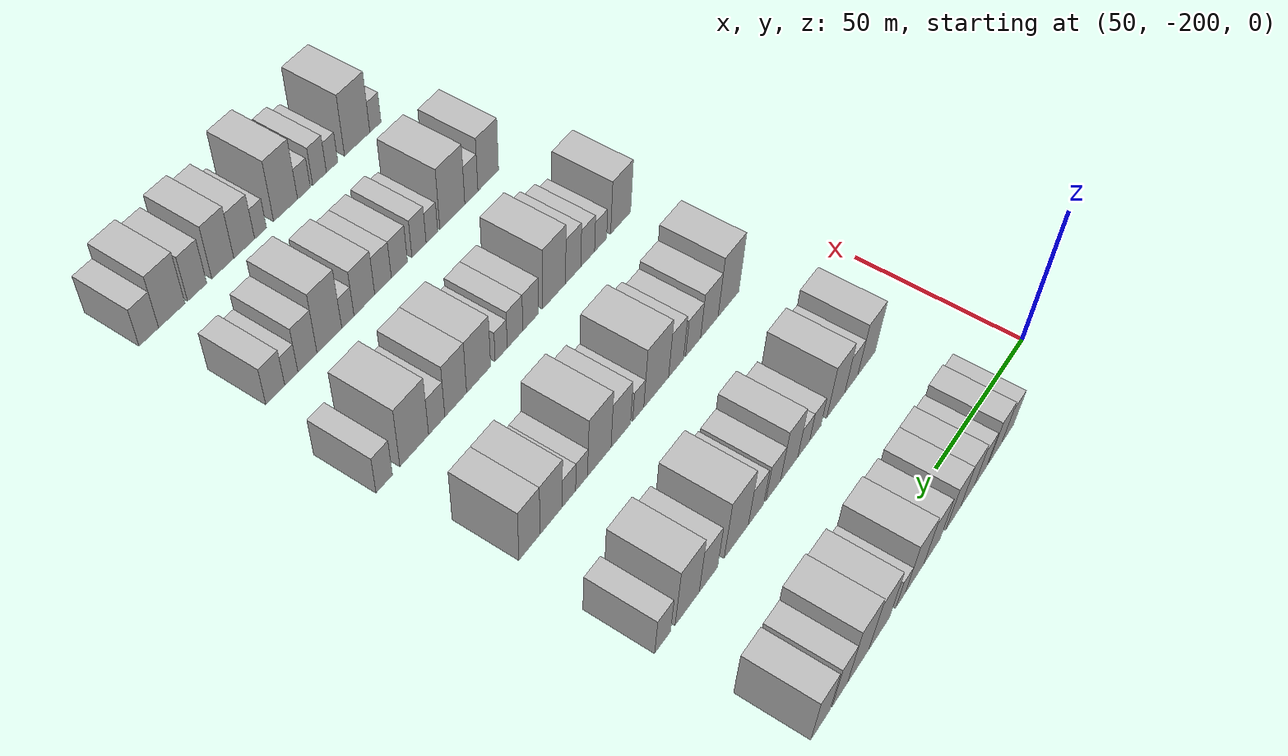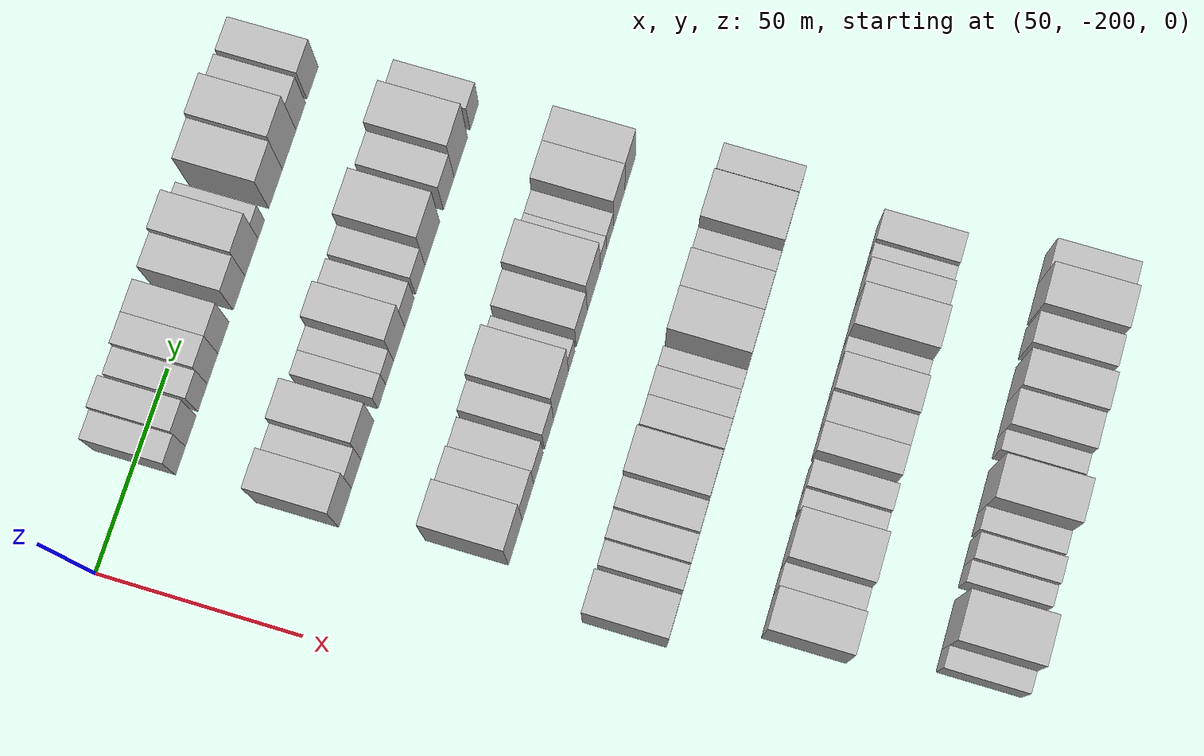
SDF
<sdf version="1.6">
 <world name="default">
  <model name="building_52">
   <static>1</static>
   <pose>50.0000 -169.6060 0 0.000000 0.000000 0.000000</pose>
   <link name="link">
    <pose>0 0 7.50 0 0 0</pose>
    <collision name="collision"><geometry><box><size>20.0000 7.0065 15.0000</size></box></geometry></collision>
    <visual name="visual">
     <cast_shadows>0</cast_shadows>
     <geometry><box><size>20.0000 7.0065 15.0000</size></box></geometry>
     <material>
      <script>
       <uri>model://HANNAS_wall/materials/scripts</uri>
       <uri>model://HANNAS_wall/materials/textures</uri>
       <name>vrc/HANNAS_wall</name>
      </script>
     </material>
    </visual>
   </link>
  </model>
  <model name="building_53">
   <static>1</static>
   <pose>50.0000 -162.2995 0 0.000000 0.000000 0.000000</pose>
   <link name="link">
    <pose>0 0 9.00 0 0 0</pose>
    <collision name="collision"><geometry><box><size>20.0000 7.6064 18.0000</size></box></geometry></collision>
    <visual name="visual">
     <cast_shadows>0</cast_shadows>
     <geometry><box><size>20.0000 7.6064 18.0000</size></box></geometry>
     <material>
      <script>
       <uri>model://HANNAS_wall/materials/scripts</uri>
       <uri>model://HANNAS_wall/materials/textures</uri>
       <name>vrc/HANNAS_wall</name>
      </script>
     </material>
    </visual>
   </link>
  </model>
  <model name="building_54">
   <static>1</static>
   <pose>50.0000 -154.1089 0 0.000000 0.000000 0.000000</pose>
   <link name="link">
    <pose>0 0 7.50 0 0 0</pose>
    <collision name="collision"><geometry><box><size>20.0000 6.7750 15.0000</size></box></geometry></collision>
    <visual name="visual">
     <cast_shadows>0</cast_shadows>
     <geometry><box><size>20.0000 6.7750 15.0000</size></box></geometry>
     <material>
      <script>
       <uri>model://HANNAS_wall/materials/scripts</uri>
       <uri>model://HANNAS_wall/materials/textures</uri>
       <name>vrc/HANNAS_wall</name>
      </script>
     </material>
    </visual>
   </link>
  </model>
  <model name="building_55">
   <static>1</static>
   <pose>50.0000 -146.9112 0 0.000000 0.000000 0.000000</pose>
   <link name="link">
    <pose>0 0 9.00 0 0 0</pose>
    <collision name="collision"><geometry><box><size>20.0000 7.6203 18.0000</size></box></geometry></collision>
    <visual name="visual">
     <cast_shadows>0</cast_shadows>
     <geometry><box><size>20.0000 7.6203 18.0000</size></box></geometry>
     <material>
      <script>
       <uri>model://HANNAS_wall/materials/scripts</uri>
       <uri>model://HANNAS_wall/materials/textures</uri>
       <name>vrc/HANNAS_wall</name>
      </script>
     </material>
    </visual>
   </link>
  </model>
  <model name="building_56">
   <static>1</static>
   <pose>50.0000 -139.1085 0 0.000000 0.000000 0.000000</pose>
   <link name="link">
    <pose>0 0 9.00 0 0 0</pose>
    <collision name="collision"><geometry><box><size>20.0000 7.9851 18.0000</size></box></geometry></collision>
    <visual name="visual">
     <cast_shadows>0</cast_shadows>
     <geometry><box><size>20.0000 7.9851 18.0000</size></box></geometry>
     <material>
      <script>
       <uri>model://HANNAS_wall/materials/scripts</uri>
       <uri>model://HANNAS_wall/materials/textures</uri>
       <name>vrc/HANNAS_wall</name>
      </script>
     </material>
    </visual>
   </link>
  </model>
  <model name="building_57">
   <static>1</static>
   <pose>50.0000 -127.8054 0 0.000000 0.000000 0.000000</pose>
   <link name="link">
    <pose>0 0 9.00 0 0 0</pose>
    <collision name="collision"><geometry><box><size>20.0000 8.6211 18.0000</size></box></geometry></collision>
    <visual name="visual">
     <cast_shadows>0</cast_shadows>
     <geometry><box><size>20.0000 8.6211 18.0000</size></box></geometry>
     <material>
      <script>
       <uri>model://HANNAS_wall/materials/scripts</uri>
       <uri>model://HANNAS_wall/materials/textures</uri>
       <name>vrc/HANNAS_wall</name>
      </script>
     </material>
    </visual>
   </link>
  </model>
  <model name="building_58">
   <static>1</static>
   <pose>50.0000 -118.7232 0 0.000000 0.000000 0.000000</pose>
   <link name="link">
    <pose>0 0 10.50 0 0 0</pose>
    <collision name="collision"><geometry><box><size>20.0000 9.5432 21.0000</size></box></geometry></collision>
    <visual name="visual">
     <cast_shadows>0</cast_shadows>
     <geometry><box><size>20.0000 9.5432 21.0000</size></box></geometry>
     <material>
      <script>
       <uri>model://HANNAS_wall/materials/scripts</uri>
       <uri>model://HANNAS_wall/materials/textures</uri>
       <name>vrc/HANNAS_wall</name>
      </script>
     </material>
    </visual>
   </link>
  </model>
  <model name="building_59">
   <static>1</static>
   <pose>50.0000 -111.5262 0 0.000000 0.000000 0.000000</pose>
   <link name="link">
    <pose>0 0 6.00 0 0 0</pose>
    <collision name="collision"><geometry><box><size>20.0000 4.8508 12.0000</size></box></geometry></collision>
    <visual name="visual">
     <cast_shadows>0</cast_shadows>
     <geometry><box><size>20.0000 4.8508 12.0000</size></box></geometry>
     <material>
      <script>
       <uri>model://HANNAS_wall/materials/scripts</uri>
       <uri>model://HANNAS_wall/materials/textures</uri>
       <name>vrc/HANNAS_wall</name>
      </script>
     </material>
    </visual>
   </link>
  </model>
  <model name="building_60">
   <static>1</static>
   <pose>50.0000 -100.9982 0 0.000000 0.000000 0.000000</pose>
   <link name="link">
    <pose>0 0 10.50 0 0 0</pose>
    <collision name="collision"><geometry><box><size>20.0000 10.2052 21.0000</size></box></geometry></collision>
    <visual name="visual">
     <cast_shadows>0</cast_shadows>
     <geometry><box><size>20.0000 10.2052 21.0000</size></box></geometry>
     <material>
      <script>
       <uri>model://HANNAS_wall/materials/scripts</uri>
       <uri>model://HANNAS_wall/materials/textures</uri>
       <name>vrc/HANNAS_wall</name>
      </script>
     </material>
    </visual>
   </link>
  </model>
  <model name="building_61">
   <static>1</static>
   <pose>50.0000 -90.7880 0 0.000000 0.000000 0.000000</pose>
   <link name="link">
    <pose>0 0 12.00 0 0 0</pose>
    <collision name="collision"><geometry><box><size>20.0000 10.2151 24.0000</size></box></geometry></collision>
    <visual name="visual">
     <cast_shadows>0</cast_shadows>
     <geometry><box><size>20.0000 10.2151 24.0000</size></box></geometry>
     <material>
      <script>
       <uri>model://HANNAS_wall/materials/scripts</uri>
       <uri>model://HANNAS_wall/materials/textures</uri>
       <name>vrc/HANNAS_wall</name>
      </script>
     </material>
    </visual>
   </link>
  </model>
  <model name="building_62">
   <static>1</static>
   <pose>50.0000 -82.0753 0 0.000000 0.000000 0.000000</pose>
   <link name="link">
    <pose>0 0 9.00 0 0 0</pose>
    <collision name="collision"><geometry><box><size>20.0000 7.2103 18.0000</size></box></geometry></collision>
    <visual name="visual">
     <cast_shadows>0</cast_shadows>
     <geometry><box><size>20.0000 7.2103 18.0000</size></box></geometry>
     <material>
      <script>
       <uri>model://HANNAS_wall/materials/scripts</uri>
       <uri>model://HANNAS_wall/materials/textures</uri>
       <name>vrc/HANNAS_wall</name>
      </script>
     </material>
    </visual>
   </link>
  </model>
  <model name="building_63">
   <static>1</static>
   <pose>50.0000 -73.1489 0 0.000000 0.000000 0.000000</pose>
   <link name="link">
    <pose>0 0 9.00 0 0 0</pose>
    <collision name="collision"><geometry><box><size>20.0000 8.6426 18.0000</size></box></geometry></collision>
    <visual name="visual">
     <cast_shadows>0</cast_shadows>
     <geometry><box><size>20.0000 8.6426 18.0000</size></box></geometry>
     <material>
      <script>
       <uri>model://HANNAS_wall/materials/scripts</uri>
       <uri>model://HANNAS_wall/materials/textures</uri>
       <name>vrc/HANNAS_wall</name>
      </script>
     </material>
    </visual>
   </link>
  </model>
  <model name="building_185">
   <static>1</static>
   <pose>90.0000 -169.1626 0 0.000000 0.000000 0.000000</pose>
   <link name="link">
    <pose>0 0 10.50 0 0 0</pose>
    <collision name="collision"><geometry><box><size>20.0000 9.4421 21.0000</size></box></geometry></collision>
    <visual name="visual">
     <cast_shadows>0</cast_shadows>
     <geometry><box><size>20.0000 9.4421 21.0000</size></box></geometry>
     <material>
      <script>
       <uri>model://HANNAS_wall/materials/scripts</uri>
       <uri>model://HANNAS_wall/materials/textures</uri>
       <name>vrc/HANNAS_wall</name>
      </script>
     </material>
    </visual>
   </link>
  </model>
  <model name="building_186">
   <static>1</static>
   <pose>90.0000 -160.9308 0 0.000000 0.000000 0.000000</pose>
   <link name="link">
    <pose>0 0 7.50 0 0 0</pose>
    <collision name="collision"><geometry><box><size>20.0000 7.0214 15.0000</size></box></geometry></collision>
    <visual name="visual">
     <cast_shadows>0</cast_shadows>
     <geometry><box><size>20.0000 7.0214 15.0000</size></box></geometry>
     <material>
      <script>
       <uri>model://HANNAS_wall/materials/scripts</uri>
       <uri>model://HANNAS_wall/materials/textures</uri>
       <name>vrc/HANNAS_wall</name>
      </script>
     </material>
    </visual>
   </link>
  </model>
  <model name="building_187">
   <static>1</static>
   <pose>90.0000 -152.6517 0 0.000000 0.000000 0.000000</pose>
   <link name="link">
    <pose>0 0 10.50 0 0 0</pose>
    <collision name="collision"><geometry><box><size>20.0000 9.5369 21.0000</size></box></geometry></collision>
    <visual name="visual">
     <cast_shadows>0</cast_shadows>
     <geometry><box><size>20.0000 9.5369 21.0000</size></box></geometry>
     <material>
      <script>
       <uri>model://HANNAS_wall/materials/scripts</uri>
       <uri>model://HANNAS_wall/materials/textures</uri>
       <name>vrc/HANNAS_wall</name>
      </script>
     </material>
    </visual>
   </link>
  </model>
  <model name="building_188">
   <static>1</static>
   <pose>90.0000 -141.9457 0 0.000000 0.000000 0.000000</pose>
   <link name="link">
    <pose>0 0 6.00 0 0 0</pose>
    <collision name="collision"><geometry><box><size>20.0000 5.8750 12.0000</size></box></geometry></collision>
    <visual name="visual">
     <cast_shadows>0</cast_shadows>
     <geometry><box><size>20.0000 5.8750 12.0000</size></box></geometry>
     <material>
      <script>
       <uri>model://HANNAS_wall/materials/scripts</uri>
       <uri>model://HANNAS_wall/materials/textures</uri>
       <name>vrc/HANNAS_wall</name>
      </script>
     </material>
    </visual>
   </link>
  </model>
  <model name="building_189">
   <static>1</static>
   <pose>90.0000 -136.0229 0 0.000000 0.000000 0.000000</pose>
   <link name="link">
    <pose>0 0 6.00 0 0 0</pose>
    <collision name="collision"><geometry><box><size>20.0000 5.9707 12.0000</size></box></geometry></collision>
    <visual name="visual">
     <cast_shadows>0</cast_shadows>
     <geometry><box><size>20.0000 5.9707 12.0000</size></box></geometry>
     <material>
      <script>
       <uri>model://HANNAS_wall/materials/scripts</uri>
       <uri>model://HANNAS_wall/materials/textures</uri>
       <name>vrc/HANNAS_wall</name>
      </script>
     </material>
    </visual>
   </link>
  </model>
  <model name="building_190">
   <static>1</static>
   <pose>90.0000 -128.7499 0 0.000000 0.000000 0.000000</pose>
   <link name="link">
    <pose>0 0 10.50 0 0 0</pose>
    <collision name="collision"><geometry><box><size>20.0000 8.5753 21.0000</size></box></geometry></collision>
    <visual name="visual">
     <cast_shadows>0</cast_shadows>
     <geometry><box><size>20.0000 8.5753 21.0000</size></box></geometry>
     <material>
      <script>
       <uri>model://HANNAS_wall/materials/scripts</uri>
       <uri>model://HANNAS_wall/materials/textures</uri>
       <name>vrc/HANNAS_wall</name>
      </script>
     </material>
    </visual>
   </link>
  </model>
  <model name="building_191">
   <static>1</static>
   <pose>90.0000 -120.8444 0 0.000000 0.000000 0.000000</pose>
   <link name="link">
    <pose>0 0 7.50 0 0 0</pose>
    <collision name="collision"><geometry><box><size>20.0000 7.2357 15.0000</size></box></geometry></collision>
    <visual name="visual">
     <cast_shadows>0</cast_shadows>
     <geometry><box><size>20.0000 7.2357 15.0000</size></box></geometry>
     <material>
      <script>
       <uri>model://HANNAS_wall/materials/scripts</uri>
       <uri>model://HANNAS_wall/materials/textures</uri>
       <name>vrc/HANNAS_wall</name>
      </script>
     </material>
    </visual>
   </link>
  </model>
  <model name="building_192">
   <static>1</static>
   <pose>90.0000 -112.5585 0 0.000000 0.000000 0.000000</pose>
   <link name="link">
    <pose>0 0 7.50 0 0 0</pose>
    <collision name="collision"><geometry><box><size>20.0000 7.3362 15.0000</size></box></geometry></collision>
    <visual name="visual">
     <cast_shadows>0</cast_shadows>
     <geometry><box><size>20.0000 7.3362 15.0000</size></box></geometry>
     <material>
      <script>
       <uri>model://HANNAS_wall/materials/scripts</uri>
       <uri>model://HANNAS_wall/materials/textures</uri>
       <name>vrc/HANNAS_wall</name>
      </script>
     </material>
    </visual>
   </link>
  </model>
  <model name="building_193">
   <static>1</static>
   <pose>90.0000 -103.2338 0 0.000000 0.000000 0.000000</pose>
   <link name="link">
    <pose>0 0 12.00 0 0 0</pose>
    <collision name="collision"><geometry><box><size>20.0000 11.3133 24.0000</size></box></geometry></collision>
    <visual name="visual">
     <cast_shadows>0</cast_shadows>
     <geometry><box><size>20.0000 11.3133 24.0000</size></box></geometry>
     <material>
      <script>
       <uri>model://HANNAS_wall/materials/scripts</uri>
       <uri>model://HANNAS_wall/materials/textures</uri>
       <name>vrc/HANNAS_wall</name>
      </script>
     </material>
    </visual>
   </link>
  </model>
  <model name="building_194">
   <static>1</static>
   <pose>90.0000 -90.3968 0 0.000000 0.000000 0.000000</pose>
   <link name="link">
    <pose>0 0 9.00 0 0 0</pose>
    <collision name="collision"><geometry><box><size>20.0000 8.3606 18.0000</size></box></geometry></collision>
    <visual name="visual">
     <cast_shadows>0</cast_shadows>
     <geometry><box><size>20.0000 8.3606 18.0000</size></box></geometry>
     <material>
      <script>
       <uri>model://HANNAS_wall/materials/scripts</uri>
       <uri>model://HANNAS_wall/materials/textures</uri>
       <name>vrc/HANNAS_wall</name>
      </script>
     </material>
    </visual>
   </link>
  </model>
  <model name="building_195">
   <static>1</static>
   <pose>90.0000 -80.9156 0 0.000000 0.000000 0.000000</pose>
   <link name="link">
    <pose>0 0 12.00 0 0 0</pose>
    <collision name="collision"><geometry><box><size>20.0000 10.6018 24.0000</size></box></geometry></collision>
    <visual name="visual">
     <cast_shadows>0</cast_shadows>
     <geometry><box><size>20.0000 10.6018 24.0000</size></box></geometry>
     <material>
      <script>
       <uri>model://HANNAS_wall/materials/scripts</uri>
       <uri>model://HANNAS_wall/materials/textures</uri>
       <name>vrc/HANNAS_wall</name>
      </script>
     </material>
    </visual>
   </link>
  </model>
  <model name="building_196">
   <static>1</static>
   <pose>90.0000 -70.2063 0 0.000000 0.000000 0.000000</pose>
   <link name="link">
    <pose>0 0 7.50 0 0 0</pose>
    <collision name="collision"><geometry><box><size>20.0000 6.8167 15.0000</size></box></geometry></collision>
    <visual name="visual">
     <cast_shadows>0</cast_shadows>
     <geometry><box><size>20.0000 6.8167 15.0000</size></box></geometry>
     <material>
      <script>
       <uri>model://HANNAS_wall/materials/scripts</uri>
       <uri>model://HANNAS_wall/materials/textures</uri>
       <name>vrc/HANNAS_wall</name>
      </script>
     </material>
    </visual>
   </link>
  </model>
  <model name="building_314">
   <static>1</static>
   <pose>130.0000 -165.6641 0 0.000000 0.000000 0.000000</pose>
   <link name="link">
    <pose>0 0 12.00 0 0 0</pose>
    <collision name="collision"><geometry><box><size>20.0000 10.7247 24.0000</size></box></geometry></collision>
    <visual name="visual">
     <cast_shadows>0</cast_shadows>
     <geometry><box><size>20.0000 10.7247 24.0000</size></box></geometry>
     <material>
      <script>
       <uri>model://HANNAS_wall/materials/scripts</uri>
       <uri>model://HANNAS_wall/materials/textures</uri>
       <name>vrc/HANNAS_wall</name>
      </script>
     </material>
    </visual>
   </link>
  </model>
  <model name="building_315">
   <static>1</static>
   <pose>130.0000 -155.8658 0 0.000000 0.000000 0.000000</pose>
   <link name="link">
    <pose>0 0 9.00 0 0 0</pose>
    <collision name="collision"><geometry><box><size>20.0000 8.8719 18.0000</size></box></geometry></collision>
    <visual name="visual">
     <cast_shadows>0</cast_shadows>
     <geometry><box><size>20.0000 8.8719 18.0000</size></box></geometry>
     <material>
      <script>
       <uri>model://HANNAS_wall/materials/scripts</uri>
       <uri>model://HANNAS_wall/materials/textures</uri>
       <name>vrc/HANNAS_wall</name>
      </script>
     </material>
    </visual>
   </link>
  </model>
  <model name="building_316">
   <static>1</static>
   <pose>130.0000 -147.6825 0 0.000000 0.000000 0.000000</pose>
   <link name="link">
    <pose>0 0 7.50 0 0 0</pose>
    <collision name="collision"><geometry><box><size>20.0000 7.4947 15.0000</size></box></geometry></collision>
    <visual name="visual">
     <cast_shadows>0</cast_shadows>
     <geometry><box><size>20.0000 7.4947 15.0000</size></box></geometry>
     <material>
      <script>
       <uri>model://HANNAS_wall/materials/scripts</uri>
       <uri>model://HANNAS_wall/materials/textures</uri>
       <name>vrc/HANNAS_wall</name>
      </script>
     </material>
    </visual>
   </link>
  </model>
  <model name="building_317">
   <static>1</static>
   <pose>130.0000 -139.3098 0 0.000000 0.000000 0.000000</pose>
   <link name="link">
    <pose>0 0 9.00 0 0 0</pose>
    <collision name="collision"><geometry><box><size>20.0000 7.2507 18.0000</size></box></geometry></collision>
    <visual name="visual">
     <cast_shadows>0</cast_shadows>
     <geometry><box><size>20.0000 7.2507 18.0000</size></box></geometry>
     <material>
      <script>
       <uri>model://HANNAS_wall/materials/scripts</uri>
       <uri>model://HANNAS_wall/materials/textures</uri>
       <name>vrc/HANNAS_wall</name>
      </script>
     </material>
    </visual>
   </link>
  </model>
  <model name="building_318">
   <static>1</static>
   <pose>130.0000 -129.7644 0 0.000000 0.000000 0.000000</pose>
   <link name="link">
    <pose>0 0 12.00 0 0 0</pose>
    <collision name="collision"><geometry><box><size>20.0000 11.8401 24.0000</size></box></geometry></collision>
    <visual name="visual">
     <cast_shadows>0</cast_shadows>
     <geometry><box><size>20.0000 11.8401 24.0000</size></box></geometry>
     <material>
      <script>
       <uri>model://HANNAS_wall/materials/scripts</uri>
       <uri>model://HANNAS_wall/materials/textures</uri>
       <name>vrc/HANNAS_wall</name>
      </script>
     </material>
    </visual>
   </link>
  </model>
  <model name="building_319">
   <static>1</static>
   <pose>130.0000 -121.2523 0 0.000000 0.000000 0.000000</pose>
   <link name="link">
    <pose>0 0 6.00 0 0 0</pose>
    <collision name="collision"><geometry><box><size>20.0000 5.1843 12.0000</size></box></geometry></collision>
    <visual name="visual">
     <cast_shadows>0</cast_shadows>
     <geometry><box><size>20.0000 5.1843 12.0000</size></box></geometry>
     <material>
      <script>
       <uri>model://HANNAS_wall/materials/scripts</uri>
       <uri>model://HANNAS_wall/materials/textures</uri>
       <name>vrc/HANNAS_wall</name>
      </script>
     </material>
    </visual>
   </link>
  </model>
  <model name="building_320">
   <static>1</static>
   <pose>130.0000 -113.1853 0 0.000000 0.000000 0.000000</pose>
   <link name="link">
    <pose>0 0 9.00 0 0 0</pose>
    <collision name="collision"><geometry><box><size>20.0000 8.9496 18.0000</size></box></geometry></collision>
    <visual name="visual">
     <cast_shadows>0</cast_shadows>
     <geometry><box><size>20.0000 8.9496 18.0000</size></box></geometry>
     <material>
      <script>
       <uri>model://HANNAS_wall/materials/scripts</uri>
       <uri>model://HANNAS_wall/materials/textures</uri>
       <name>vrc/HANNAS_wall</name>
      </script>
     </material>
    </visual>
   </link>
  </model>
  <model name="building_321">
   <static>1</static>
   <pose>130.0000 -103.4290 0 0.000000 0.000000 0.000000</pose>
   <link name="link">
    <pose>0 0 12.00 0 0 0</pose>
    <collision name="collision"><geometry><box><size>20.0000 10.5631 24.0000</size></box></geometry></collision>
    <visual name="visual">
     <cast_shadows>0</cast_shadows>
     <geometry><box><size>20.0000 10.5631 24.0000</size></box></geometry>
     <material>
      <script>
       <uri>model://HANNAS_wall/materials/scripts</uri>
       <uri>model://HANNAS_wall/materials/textures</uri>
       <name>vrc/HANNAS_wall</name>
      </script>
     </material>
    </visual>
   </link>
  </model>
  <model name="building_322">
   <static>1</static>
   <pose>130.0000 -95.5486 0 0.000000 0.000000 0.000000</pose>
   <link name="link">
    <pose>0 0 6.00 0 0 0</pose>
    <collision name="collision"><geometry><box><size>20.0000 5.1976 12.0000</size></box></geometry></collision>
    <visual name="visual">
     <cast_shadows>0</cast_shadows>
     <geometry><box><size>20.0000 5.1976 12.0000</size></box></geometry>
     <material>
      <script>
       <uri>model://HANNAS_wall/materials/scripts</uri>
       <uri>model://HANNAS_wall/materials/textures</uri>
       <name>vrc/HANNAS_wall</name>
      </script>
     </material>
    </visual>
   </link>
  </model>
  <model name="building_323">
   <static>1</static>
   <pose>130.0000 -90.0333 0 0.000000 0.000000 0.000000</pose>
   <link name="link">
    <pose>0 0 6.00 0 0 0</pose>
    <collision name="collision"><geometry><box><size>20.0000 5.8330 12.0000</size></box></geometry></collision>
    <visual name="visual">
     <cast_shadows>0</cast_shadows>
     <geometry><box><size>20.0000 5.8330 12.0000</size></box></geometry>
     <material>
      <script>
       <uri>model://HANNAS_wall/materials/scripts</uri>
       <uri>model://HANNAS_wall/materials/textures</uri>
       <name>vrc/HANNAS_wall</name>
      </script>
     </material>
    </visual>
   </link>
  </model>
  <model name="building_324">
   <static>1</static>
   <pose>130.0000 -82.3842 0 0.000000 0.000000 0.000000</pose>
   <link name="link">
    <pose>0 0 10.50 0 0 0</pose>
    <collision name="collision"><geometry><box><size>20.0000 9.4652 21.0000</size></box></geometry></collision>
    <visual name="visual">
     <cast_shadows>0</cast_shadows>
     <geometry><box><size>20.0000 9.4652 21.0000</size></box></geometry>
     <material>
      <script>
       <uri>model://HANNAS_wall/materials/scripts</uri>
       <uri>model://HANNAS_wall/materials/textures</uri>
       <name>vrc/HANNAS_wall</name>
      </script>
     </material>
    </visual>
   </link>
  </model>
  <model name="building_325">
   <static>1</static>
   <pose>130.0000 -73.2861 0 0.000000 0.000000 0.000000</pose>
   <link name="link">
    <pose>0 0 10.50 0 0 0</pose>
    <collision name="collision"><geometry><box><size>20.0000 8.7311 21.0000</size></box></geometry></collision>
    <visual name="visual">
     <cast_shadows>0</cast_shadows>
     <geometry><box><size>20.0000 8.7311 21.0000</size></box></geometry>
     <material>
      <script>
       <uri>model://HANNAS_wall/materials/scripts</uri>
       <uri>model://HANNAS_wall/materials/textures</uri>
       <name>vrc/HANNAS_wall</name>
      </script>
     </material>
    </visual>
   </link>
  </model>
  <model name="building_445">
   <static>1</static>
   <pose>170.0000 -173.5860 0 0.000000 0.000000 0.000000</pose>
   <link name="link">
    <pose>0 0 10.50 0 0 0</pose>
    <collision name="collision"><geometry><box><size>20.0000 10.1110 21.0000</size></box></geometry></collision>
    <visual name="visual">
     <cast_shadows>0</cast_shadows>
     <geometry><box><size>20.0000 10.1110 21.0000</size></box></geometry>
     <material>
      <script>
       <uri>model://HANNAS_wall/materials/scripts</uri>
       <uri>model://HANNAS_wall/materials/textures</uri>
       <name>vrc/HANNAS_wall</name>
      </script>
     </material>
    </visual>
   </link>
  </model>
  <model name="building_446">
   <static>1</static>
   <pose>170.0000 -163.5321 0 0.000000 0.000000 0.000000</pose>
   <link name="link">
    <pose>0 0 6.00 0 0 0</pose>
    <collision name="collision"><geometry><box><size>20.0000 5.9969 12.0000</size></box></geometry></collision>
    <visual name="visual">
     <cast_shadows>0</cast_shadows>
     <geometry><box><size>20.0000 5.9969 12.0000</size></box></geometry>
     <material>
      <script>
       <uri>model://HANNAS_wall/materials/scripts</uri>
       <uri>model://HANNAS_wall/materials/textures</uri>
       <name>vrc/HANNAS_wall</name>
      </script>
     </material>
    </visual>
   </link>
  </model>
  <model name="building_447">
   <static>1</static>
   <pose>170.0000 -157.1532 0 0.000000 0.000000 0.000000</pose>
   <link name="link">
    <pose>0 0 7.50 0 0 0</pose>
    <collision name="collision"><geometry><box><size>20.0000 6.7609 15.0000</size></box></geometry></collision>
    <visual name="visual">
     <cast_shadows>0</cast_shadows>
     <geometry><box><size>20.0000 6.7609 15.0000</size></box></geometry>
     <material>
      <script>
       <uri>model://HANNAS_wall/materials/scripts</uri>
       <uri>model://HANNAS_wall/materials/textures</uri>
       <name>vrc/HANNAS_wall</name>
      </script>
     </material>
    </visual>
   </link>
  </model>
  <model name="building_448">
   <static>1</static>
   <pose>170.0000 -150.1004 0 0.000000 0.000000 0.000000</pose>
   <link name="link">
    <pose>0 0 9.00 0 0 0</pose>
    <collision name="collision"><geometry><box><size>20.0000 7.3446 18.0000</size></box></geometry></collision>
    <visual name="visual">
     <cast_shadows>0</cast_shadows>
     <geometry><box><size>20.0000 7.3446 18.0000</size></box></geometry>
     <material>
      <script>
       <uri>model://HANNAS_wall/materials/scripts</uri>
       <uri>model://HANNAS_wall/materials/textures</uri>
       <name>vrc/HANNAS_wall</name>
      </script>
     </material>
    </visual>
   </link>
  </model>
  <model name="building_449">
   <static>1</static>
   <pose>170.0000 -141.0510 0 0.000000 0.000000 0.000000</pose>
   <link name="link">
    <pose>0 0 12.00 0 0 0</pose>
    <collision name="collision"><geometry><box><size>20.0000 10.7543 24.0000</size></box></geometry></collision>
    <visual name="visual">
     <cast_shadows>0</cast_shadows>
     <geometry><box><size>20.0000 10.7543 24.0000</size></box></geometry>
     <material>
      <script>
       <uri>model://HANNAS_wall/materials/scripts</uri>
       <uri>model://HANNAS_wall/materials/textures</uri>
       <name>vrc/HANNAS_wall</name>
      </script>
     </material>
    </visual>
   </link>
  </model>
  <model name="building_450">
   <static>1</static>
   <pose>170.0000 -130.0700 0 0.000000 0.000000 0.000000</pose>
   <link name="link">
    <pose>0 0 7.50 0 0 0</pose>
    <collision name="collision"><geometry><box><size>20.0000 7.2076 15.0000</size></box></geometry></collision>
    <visual name="visual">
     <cast_shadows>0</cast_shadows>
     <geometry><box><size>20.0000 7.2076 15.0000</size></box></geometry>
     <material>
      <script>
       <uri>model://HANNAS_wall/materials/scripts</uri>
       <uri>model://HANNAS_wall/materials/textures</uri>
       <name>vrc/HANNAS_wall</name>
      </script>
     </material>
    </visual>
   </link>
  </model>
  <model name="building_451">
   <static>1</static>
   <pose>170.0000 -122.9522 0 0.000000 0.000000 0.000000</pose>
   <link name="link">
    <pose>0 0 7.50 0 0 0</pose>
    <collision name="collision"><geometry><box><size>20.0000 7.0280 15.0000</size></box></geometry></collision>
    <visual name="visual">
     <cast_shadows>0</cast_shadows>
     <geometry><box><size>20.0000 7.0280 15.0000</size></box></geometry>
     <material>
      <script>
       <uri>model://HANNAS_wall/materials/scripts</uri>
       <uri>model://HANNAS_wall/materials/textures</uri>
       <name>vrc/HANNAS_wall</name>
      </script>
     </material>
    </visual>
   </link>
  </model>
  <model name="building_452">
   <static>1</static>
   <pose>170.0000 -116.7435 0 0.000000 0.000000 0.000000</pose>
   <link name="link">
    <pose>0 0 6.00 0 0 0</pose>
    <collision name="collision"><geometry><box><size>20.0000 5.3895 12.0000</size></box></geometry></collision>
    <visual name="visual">
     <cast_shadows>0</cast_shadows>
     <geometry><box><size>20.0000 5.3895 12.0000</size></box></geometry>
     <material>
      <script>
       <uri>model://HANNAS_wall/materials/scripts</uri>
       <uri>model://HANNAS_wall/materials/textures</uri>
       <name>vrc/HANNAS_wall</name>
      </script>
     </material>
    </visual>
   </link>
  </model>
  <model name="building_453">
   <static>1</static>
   <pose>170.0000 -106.8077 0 0.000000 0.000000 0.000000</pose>
   <link name="link">
    <pose>0 0 10.50 0 0 0</pose>
    <collision name="collision"><geometry><box><size>20.0000 10.4820 21.0000</size></box></geometry></collision>
    <visual name="visual">
     <cast_shadows>0</cast_shadows>
     <geometry><box><size>20.0000 10.4820 21.0000</size></box></geometry>
     <material>
      <script>
       <uri>model://HANNAS_wall/materials/scripts</uri>
       <uri>model://HANNAS_wall/materials/textures</uri>
       <name>vrc/HANNAS_wall</name>
      </script>
     </material>
    </visual>
   </link>
  </model>
  <model name="building_454">
   <static>1</static>
   <pose>170.0000 -96.9387 0 0.000000 0.000000 0.000000</pose>
   <link name="link">
    <pose>0 0 10.50 0 0 0</pose>
    <collision name="collision"><geometry><box><size>20.0000 9.2559 21.0000</size></box></geometry></collision>
    <visual name="visual">
     <cast_shadows>0</cast_shadows>
     <geometry><box><size>20.0000 9.2559 21.0000</size></box></geometry>
     <material>
      <script>
       <uri>model://HANNAS_wall/materials/scripts</uri>
       <uri>model://HANNAS_wall/materials/textures</uri>
       <name>vrc/HANNAS_wall</name>
      </script>
     </material>
    </visual>
   </link>
  </model>
  <model name="building_455">
   <static>1</static>
   <pose>170.0000 -88.9159 0 0.000000 0.000000 0.000000</pose>
   <link name="link">
    <pose>0 0 7.50 0 0 0</pose>
    <collision name="collision"><geometry><box><size>20.0000 6.7897 15.0000</size></box></geometry></collision>
    <visual name="visual">
     <cast_shadows>0</cast_shadows>
     <geometry><box><size>20.0000 6.7897 15.0000</size></box></geometry>
     <material>
      <script>
       <uri>model://HANNAS_wall/materials/scripts</uri>
       <uri>model://HANNAS_wall/materials/textures</uri>
       <name>vrc/HANNAS_wall</name>
      </script>
     </material>
    </visual>
   </link>
  </model>
  <model name="building_456">
   <static>1</static>
   <pose>170.0000 -79.6409 0 0.000000 0.000000 0.000000</pose>
   <link name="link">
    <pose>0 0 12.00 0 0 0</pose>
    <collision name="collision"><geometry><box><size>20.0000 11.7604 24.0000</size></box></geometry></collision>
    <visual name="visual">
     <cast_shadows>0</cast_shadows>
     <geometry><box><size>20.0000 11.7604 24.0000</size></box></geometry>
     <material>
      <script>
       <uri>model://HANNAS_wall/materials/scripts</uri>
       <uri>model://HANNAS_wall/materials/textures</uri>
       <name>vrc/HANNAS_wall</name>
      </script>
     </material>
    </visual>
   </link>
  </model>
  <model name="building_457">
   <static>1</static>
   <pose>170.0000 -67.5002 0 0.000000 0.000000 0.000000</pose>
   <link name="link">
    <pose>0 0 7.50 0 0 0</pose>
    <collision name="collision"><geometry><box><size>20.0000 6.5210 15.0000</size></box></geometry></collision>
    <visual name="visual">
     <cast_shadows>0</cast_shadows>
     <geometry><box><size>20.0000 6.5210 15.0000</size></box></geometry>
     <material>
      <script>
       <uri>model://HANNAS_wall/materials/scripts</uri>
       <uri>model://HANNAS_wall/materials/textures</uri>
       <name>vrc/HANNAS_wall</name>
      </script>
     </material>
    </visual>
   </link>
  </model>
  <model name="building_590">
   <static>1</static>
   <pose>210.0000 -165.4416 0 0.000000 0.000000 0.000000</pose>
   <link name="link">
    <pose>0 0 10.50 0 0 0</pose>
    <collision name="collision"><geometry><box><size>20.0000 9.9477 21.0000</size></box></geometry></collision>
    <visual name="visual">
     <cast_shadows>0</cast_shadows>
     <geometry><box><size>20.0000 9.9477 21.0000</size></box></geometry>
     <material>
      <script>
       <uri>model://HANNAS_wall/materials/scripts</uri>
       <uri>model://HANNAS_wall/materials/textures</uri>
       <name>vrc/HANNAS_wall</name>
      </script>
     </material>
    </visual>
   </link>
  </model>
  <model name="building_591">
   <static>1</static>
   <pose>210.0000 -157.3615 0 0.000000 0.000000 0.000000</pose>
   <link name="link">
    <pose>0 0 7.50 0 0 0</pose>
    <collision name="collision"><geometry><box><size>20.0000 6.2126 15.0000</size></box></geometry></collision>
    <visual name="visual">
     <cast_shadows>0</cast_shadows>
     <geometry><box><size>20.0000 6.2126 15.0000</size></box></geometry>
     <material>
      <script>
       <uri>model://HANNAS_wall/materials/scripts</uri>
       <uri>model://HANNAS_wall/materials/textures</uri>
       <name>vrc/HANNAS_wall</name>
      </script>
     </material>
    </visual>
   </link>
  </model>
  <model name="building_592">
   <static>1</static>
   <pose>210.0000 -148.4412 0 0.000000 0.000000 0.000000</pose>
   <link name="link">
    <pose>0 0 12.00 0 0 0</pose>
    <collision name="collision"><geometry><box><size>20.0000 11.6279 24.0000</size></box></geometry></collision>
    <visual name="visual">
     <cast_shadows>0</cast_shadows>
     <geometry><box><size>20.0000 11.6279 24.0000</size></box></geometry>
     <material>
      <script>
       <uri>model://HANNAS_wall/materials/scripts</uri>
       <uri>model://HANNAS_wall/materials/textures</uri>
       <name>vrc/HANNAS_wall</name>
      </script>
     </material>
    </visual>
   </link>
  </model>
  <model name="building_593">
   <static>1</static>
   <pose>210.0000 -138.9936 0 0.000000 0.000000 0.000000</pose>
   <link name="link">
    <pose>0 0 6.00 0 0 0</pose>
    <collision name="collision"><geometry><box><size>20.0000 5.2675 12.0000</size></box></geometry></collision>
    <visual name="visual">
     <cast_shadows>0</cast_shadows>
     <geometry><box><size>20.0000 5.2675 12.0000</size></box></geometry>
     <material>
      <script>
       <uri>model://HANNAS_wall/materials/scripts</uri>
       <uri>model://HANNAS_wall/materials/textures</uri>
       <name>vrc/HANNAS_wall</name>
      </script>
     </material>
    </visual>
   </link>
  </model>
  <model name="building_594">
   <static>1</static>
   <pose>210.0000 -133.1680 0 0.000000 0.000000 0.000000</pose>
   <link name="link">
    <pose>0 0 7.50 0 0 0</pose>
    <collision name="collision"><geometry><box><size>20.0000 6.3835 15.0000</size></box></geometry></collision>
    <visual name="visual">
     <cast_shadows>0</cast_shadows>
     <geometry><box><size>20.0000 6.3835 15.0000</size></box></geometry>
     <material>
      <script>
       <uri>model://HANNAS_wall/materials/scripts</uri>
       <uri>model://HANNAS_wall/materials/textures</uri>
       <name>vrc/HANNAS_wall</name>
      </script>
     </material>
    </visual>
   </link>
  </model>
  <model name="building_595">
   <static>1</static>
   <pose>210.0000 -124.4260 0 0.000000 0.000000 0.000000</pose>
   <link name="link">
    <pose>0 0 7.50 0 0 0</pose>
    <collision name="collision"><geometry><box><size>20.0000 7.1006 15.0000</size></box></geometry></collision>
    <visual name="visual">
     <cast_shadows>0</cast_shadows>
     <geometry><box><size>20.0000 7.1006 15.0000</size></box></geometry>
     <material>
      <script>
       <uri>model://HANNAS_wall/materials/scripts</uri>
       <uri>model://HANNAS_wall/materials/textures</uri>
       <name>vrc/HANNAS_wall</name>
      </script>
     </material>
    </visual>
   </link>
  </model>
  <model name="building_596">
   <static>1</static>
   <pose>210.0000 -117.2642 0 0.000000 0.000000 0.000000</pose>
   <link name="link">
    <pose>0 0 7.50 0 0 0</pose>
    <collision name="collision"><geometry><box><size>20.0000 7.2230 15.0000</size></box></geometry></collision>
    <visual name="visual">
     <cast_shadows>0</cast_shadows>
     <geometry><box><size>20.0000 7.2230 15.0000</size></box></geometry>
     <material>
      <script>
       <uri>model://HANNAS_wall/materials/scripts</uri>
       <uri>model://HANNAS_wall/materials/textures</uri>
       <name>vrc/HANNAS_wall</name>
      </script>
     </material>
    </visual>
   </link>
  </model>
  <model name="building_597">
   <static>1</static>
   <pose>210.0000 -109.2281 0 0.000000 0.000000 0.000000</pose>
   <link name="link">
    <pose>0 0 9.00 0 0 0</pose>
    <collision name="collision"><geometry><box><size>20.0000 8.8491 18.0000</size></box></geometry></collision>
    <visual name="visual">
     <cast_shadows>0</cast_shadows>
     <geometry><box><size>20.0000 8.8491 18.0000</size></box></geometry>
     <material>
      <script>
       <uri>model://HANNAS_wall/materials/scripts</uri>
       <uri>model://HANNAS_wall/materials/textures</uri>
       <name>vrc/HANNAS_wall</name>
      </script>
     </material>
    </visual>
   </link>
  </model>
  <model name="building_598">
   <static>1</static>
   <pose>210.0000 -102.2225 0 0.000000 0.000000 0.000000</pose>
   <link name="link">
    <pose>0 0 6.00 0 0 0</pose>
    <collision name="collision"><geometry><box><size>20.0000 5.1620 12.0000</size></box></geometry></collision>
    <visual name="visual">
     <cast_shadows>0</cast_shadows>
     <geometry><box><size>20.0000 5.1620 12.0000</size></box></geometry>
     <material>
      <script>
       <uri>model://HANNAS_wall/materials/scripts</uri>
       <uri>model://HANNAS_wall/materials/textures</uri>
       <name>vrc/HANNAS_wall</name>
      </script>
     </material>
    </visual>
   </link>
  </model>
  <model name="building_599">
   <static>1</static>
   <pose>210.0000 -94.5389 0 0.000000 0.000000 0.000000</pose>
   <link name="link">
    <pose>0 0 12.00 0 0 0</pose>
    <collision name="collision"><geometry><box><size>20.0000 10.2051 24.0000</size></box></geometry></collision>
    <visual name="visual">
     <cast_shadows>0</cast_shadows>
     <geometry><box><size>20.0000 10.2051 24.0000</size></box></geometry>
     <material>
      <script>
       <uri>model://HANNAS_wall/materials/scripts</uri>
       <uri>model://HANNAS_wall/materials/textures</uri>
       <name>vrc/HANNAS_wall</name>
      </script>
     </material>
    </visual>
   </link>
  </model>
  <model name="building_600">
   <static>1</static>
   <pose>210.0000 -85.5938 0 0.000000 0.000000 0.000000</pose>
   <link name="link">
    <pose>0 0 9.00 0 0 0</pose>
    <collision name="collision"><geometry><box><size>20.0000 7.6852 18.0000</size></box></geometry></collision>
    <visual name="visual">
     <cast_shadows>0</cast_shadows>
     <geometry><box><size>20.0000 7.6852 18.0000</size></box></geometry>
     <material>
      <script>
       <uri>model://HANNAS_wall/materials/scripts</uri>
       <uri>model://HANNAS_wall/materials/textures</uri>
       <name>vrc/HANNAS_wall</name>
      </script>
     </material>
    </visual>
   </link>
  </model>
  <model name="building_601">
   <static>1</static>
   <pose>210.0000 -79.1152 0 0.000000 0.000000 0.000000</pose>
   <link name="link">
    <pose>0 0 6.00 0 0 0</pose>
    <collision name="collision"><geometry><box><size>20.0000 5.2719 12.0000</size></box></geometry></collision>
    <visual name="visual">
     <cast_shadows>0</cast_shadows>
     <geometry><box><size>20.0000 5.2719 12.0000</size></box></geometry>
     <material>
      <script>
       <uri>model://HANNAS_wall/materials/scripts</uri>
       <uri>model://HANNAS_wall/materials/textures</uri>
       <name>vrc/HANNAS_wall</name>
      </script>
     </material>
    </visual>
   </link>
  </model>
  <model name="building_602">
   <static>1</static>
   <pose>210.0000 -72.7520 0 0.000000 0.000000 0.000000</pose>
   <link name="link">
    <pose>0 0 7.50 0 0 0</pose>
    <collision name="collision"><geometry><box><size>20.0000 7.4546 15.0000</size></box></geometry></collision>
    <visual name="visual">
     <cast_shadows>0</cast_shadows>
     <geometry><box><size>20.0000 7.4546 15.0000</size></box></geometry>
     <material>
      <script>
       <uri>model://HANNAS_wall/materials/scripts</uri>
       <uri>model://HANNAS_wall/materials/textures</uri>
       <name>vrc/HANNAS_wall</name>
      </script>
     </material>
    </visual>
   </link>
  </model>
  <model name="building_725">
   <static>1</static>
   <pose>250.0000 -163.8310 0 0.000000 0.000000 0.000000</pose>
   <link name="link">
    <pose>0 0 6.00 0 0 0</pose>
    <collision name="collision"><geometry><box><size>20.0000 5.2240 12.0000</size></box></geometry></collision>
    <visual name="visual">
     <cast_shadows>0</cast_shadows>
     <geometry><box><size>20.0000 5.2240 12.0000</size></box></geometry>
     <material>
      <script>
       <uri>model://HANNAS_wall/materials/scripts</uri>
       <uri>model://HANNAS_wall/materials/textures</uri>
       <name>vrc/HANNAS_wall</name>
      </script>
     </material>
    </visual>
   </link>
  </model>
  <model name="building_726">
   <static>1</static>
   <pose>250.0000 -155.3671 0 0.000000 0.000000 0.000000</pose>
   <link name="link">
    <pose>0 0 12.00 0 0 0</pose>
    <collision name="collision"><geometry><box><size>20.0000 11.7039 24.0000</size></box></geometry></collision>
    <visual name="visual">
     <cast_shadows>0</cast_shadows>
     <geometry><box><size>20.0000 11.7039 24.0000</size></box></geometry>
     <material>
      <script>
       <uri>model://HANNAS_wall/materials/scripts</uri>
       <uri>model://HANNAS_wall/materials/textures</uri>
       <name>vrc/HANNAS_wall</name>
      </script>
     </material>
    </visual>
   </link>
  </model>
  <model name="building_727">
   <static>1</static>
   <pose>250.0000 -143.9469 0 0.000000 0.000000 0.000000</pose>
   <link name="link">
    <pose>0 0 6.00 0 0 0</pose>
    <collision name="collision"><geometry><box><size>20.0000 5.1364 12.0000</size></box></geometry></collision>
    <visual name="visual">
     <cast_shadows>0</cast_shadows>
     <geometry><box><size>20.0000 5.1364 12.0000</size></box></geometry>
     <material>
      <script>
       <uri>model://HANNAS_wall/materials/scripts</uri>
       <uri>model://HANNAS_wall/materials/textures</uri>
       <name>vrc/HANNAS_wall</name>
      </script>
     </material>
    </visual>
   </link>
  </model>
  <model name="building_728">
   <static>1</static>
   <pose>250.0000 -138.3034 0 0.000000 0.000000 0.000000</pose>
   <link name="link">
    <pose>0 0 7.50 0 0 0</pose>
    <collision name="collision"><geometry><box><size>20.0000 6.1506 15.0000</size></box></geometry></collision>
    <visual name="visual">
     <cast_shadows>0</cast_shadows>
     <geometry><box><size>20.0000 6.1506 15.0000</size></box></geometry>
     <material>
      <script>
       <uri>model://HANNAS_wall/materials/scripts</uri>
       <uri>model://HANNAS_wall/materials/textures</uri>
       <name>vrc/HANNAS_wall</name>
      </script>
     </material>
    </visual>
   </link>
  </model>
  <model name="building_729">
   <static>1</static>
   <pose>250.0000 -131.4360 0 0.000000 0.000000 0.000000</pose>
   <link name="link">
    <pose>0 0 6.00 0 0 0</pose>
    <collision name="collision"><geometry><box><size>20.0000 5.5842 12.0000</size></box></geometry></collision>
    <visual name="visual">
     <cast_shadows>0</cast_shadows>
     <geometry><box><size>20.0000 5.5842 12.0000</size></box></geometry>
     <material>
      <script>
       <uri>model://HANNAS_wall/materials/scripts</uri>
       <uri>model://HANNAS_wall/materials/textures</uri>
       <name>vrc/HANNAS_wall</name>
      </script>
     </material>
    </visual>
   </link>
  </model>
  <model name="building_730">
   <static>1</static>
   <pose>250.0000 -123.4743 0 0.000000 0.000000 0.000000</pose>
   <link name="link">
    <pose>0 0 12.00 0 0 0</pose>
    <collision name="collision"><geometry><box><size>20.0000 10.3394 24.0000</size></box></geometry></collision>
    <visual name="visual">
     <cast_shadows>0</cast_shadows>
     <geometry><box><size>20.0000 10.3394 24.0000</size></box></geometry>
     <material>
      <script>
       <uri>model://HANNAS_wall/materials/scripts</uri>
       <uri>model://HANNAS_wall/materials/textures</uri>
       <name>vrc/HANNAS_wall</name>
      </script>
     </material>
    </visual>
   </link>
  </model>
  <model name="building_731">
   <static>1</static>
   <pose>250.0000 -112.8067 0 0.000000 0.000000 0.000000</pose>
   <link name="link">
    <pose>0 0 6.00 0 0 0</pose>
    <collision name="collision"><geometry><box><size>20.0000 4.9958 12.0000</size></box></geometry></collision>
    <visual name="visual">
     <cast_shadows>0</cast_shadows>
     <geometry><box><size>20.0000 4.9958 12.0000</size></box></geometry>
     <material>
      <script>
       <uri>model://HANNAS_wall/materials/scripts</uri>
       <uri>model://HANNAS_wall/materials/textures</uri>
       <name>vrc/HANNAS_wall</name>
      </script>
     </material>
    </visual>
   </link>
  </model>
  <model name="building_732">
   <static>1</static>
   <pose>250.0000 -105.9860 0 0.000000 0.000000 0.000000</pose>
   <link name="link">
    <pose>0 0 9.00 0 0 0</pose>
    <collision name="collision"><geometry><box><size>20.0000 8.6456 18.0000</size></box></geometry></collision>
    <visual name="visual">
     <cast_shadows>0</cast_shadows>
     <geometry><box><size>20.0000 8.6456 18.0000</size></box></geometry>
     <material>
      <script>
       <uri>model://HANNAS_wall/materials/scripts</uri>
       <uri>model://HANNAS_wall/materials/textures</uri>
       <name>vrc/HANNAS_wall</name>
      </script>
     </material>
    </visual>
   </link>
  </model>
  <model name="building_733">
   <static>1</static>
   <pose>250.0000 -97.1791 0 0.000000 0.000000 0.000000</pose>
   <link name="link">
    <pose>0 0 10.50 0 0 0</pose>
    <collision name="collision"><geometry><box><size>20.0000 8.9681 21.0000</size></box></geometry></collision>
    <visual name="visual">
     <cast_shadows>0</cast_shadows>
     <geometry><box><size>20.0000 8.9681 21.0000</size></box></geometry>
     <material>
      <script>
       <uri>model://HANNAS_wall/materials/scripts</uri>
       <uri>model://HANNAS_wall/materials/textures</uri>
       <name>vrc/HANNAS_wall</name>
      </script>
     </material>
    </visual>
   </link>
  </model>
  <model name="building_734">
   <static>1</static>
   <pose>250.0000 -86.8669 0 0.000000 0.000000 0.000000</pose>
   <link name="link">
    <pose>0 0 9.00 0 0 0</pose>
    <collision name="collision"><geometry><box><size>20.0000 7.6562 18.0000</size></box></geometry></collision>
    <visual name="visual">
     <cast_shadows>0</cast_shadows>
     <geometry><box><size>20.0000 7.6562 18.0000</size></box></geometry>
     <material>
      <script>
       <uri>model://HANNAS_wall/materials/scripts</uri>
       <uri>model://HANNAS_wall/materials/textures</uri>
       <name>vrc/HANNAS_wall</name>
      </script>
     </material>
    </visual>
   </link>
  </model>
  <model name="building_735">
   <static>1</static>
   <pose>250.0000 -76.9134 0 0.000000 0.000000 0.000000</pose>
   <link name="link">
    <pose>0 0 10.50 0 0 0</pose>
    <collision name="collision"><geometry><box><size>20.0000 10.2509 21.0000</size></box></geometry></collision>
    <visual name="visual">
     <cast_shadows>0</cast_shadows>
     <geometry><box><size>20.0000 10.2509 21.0000</size></box></geometry>
     <material>
      <script>
       <uri>model://HANNAS_wall/materials/scripts</uri>
       <uri>model://HANNAS_wall/materials/textures</uri>
       <name>vrc/HANNAS_wall</name>
      </script>
     </material>
    </visual>
   </link>
  </model>
  <model name="building_736">
   <static>1</static>
   <pose>250.0000 -68.0501 0 0.000000 0.000000 0.000000</pose>
   <link name="link">
    <pose>0 0 7.50 0 0 0</pose>
    <collision name="collision"><geometry><box><size>20.0000 7.4757 15.0000</size></box></geometry></collision>
    <visual name="visual">
     <cast_shadows>0</cast_shadows>
     <geometry><box><size>20.0000 7.4757 15.0000</size></box></geometry>
     <material>
      <script>
       <uri>model://HANNAS_wall/materials/scripts</uri>
       <uri>model://HANNAS_wall/materials/textures</uri>
       <name>vrc/HANNAS_wall</name>
      </script>
     </material>
    </visual>
   </link>
  </model>
 </world>
</sdf>
